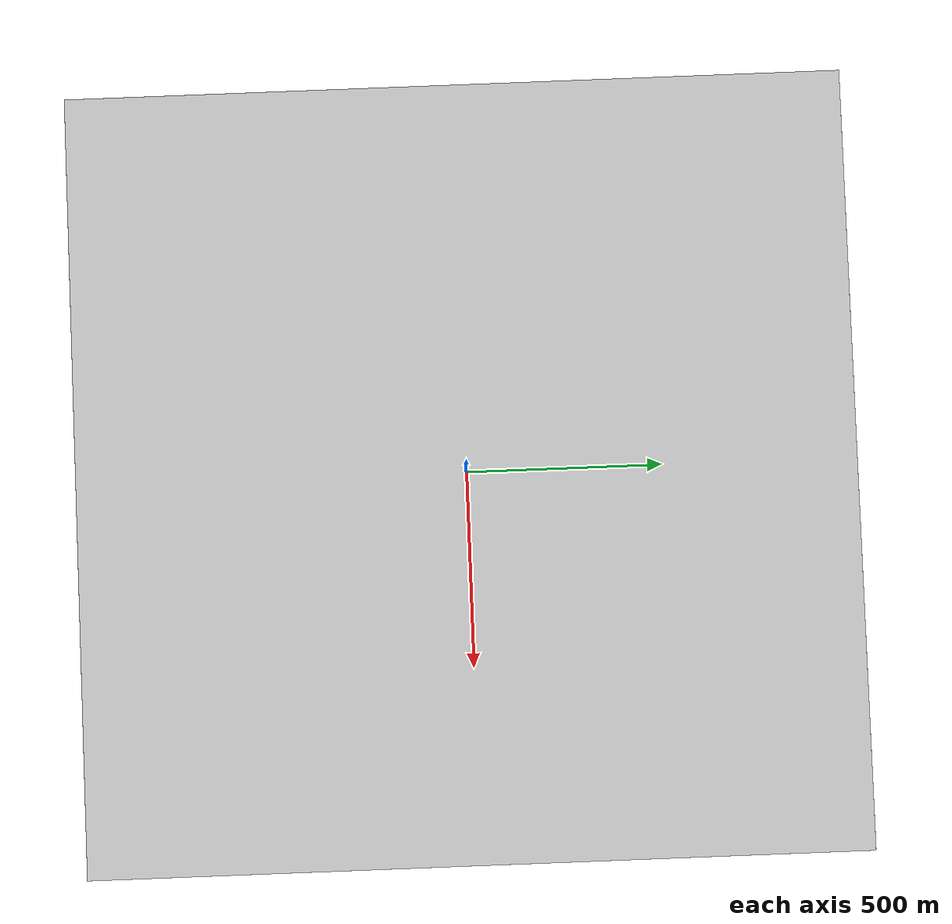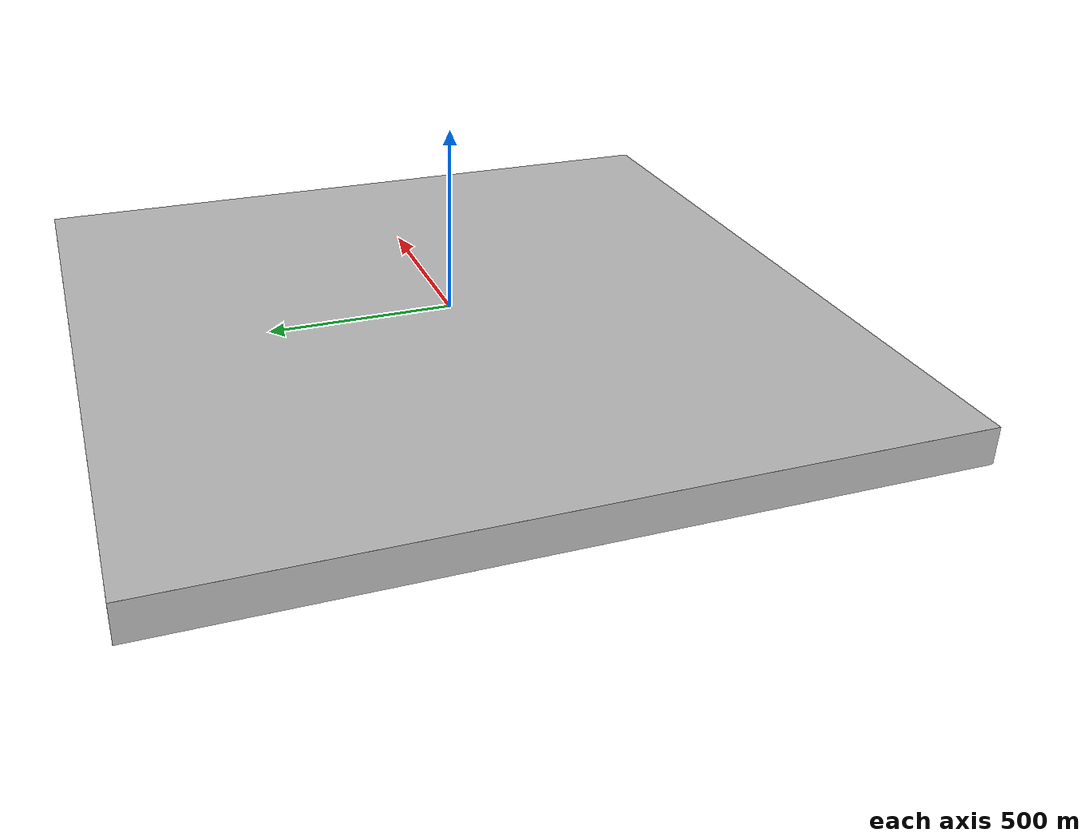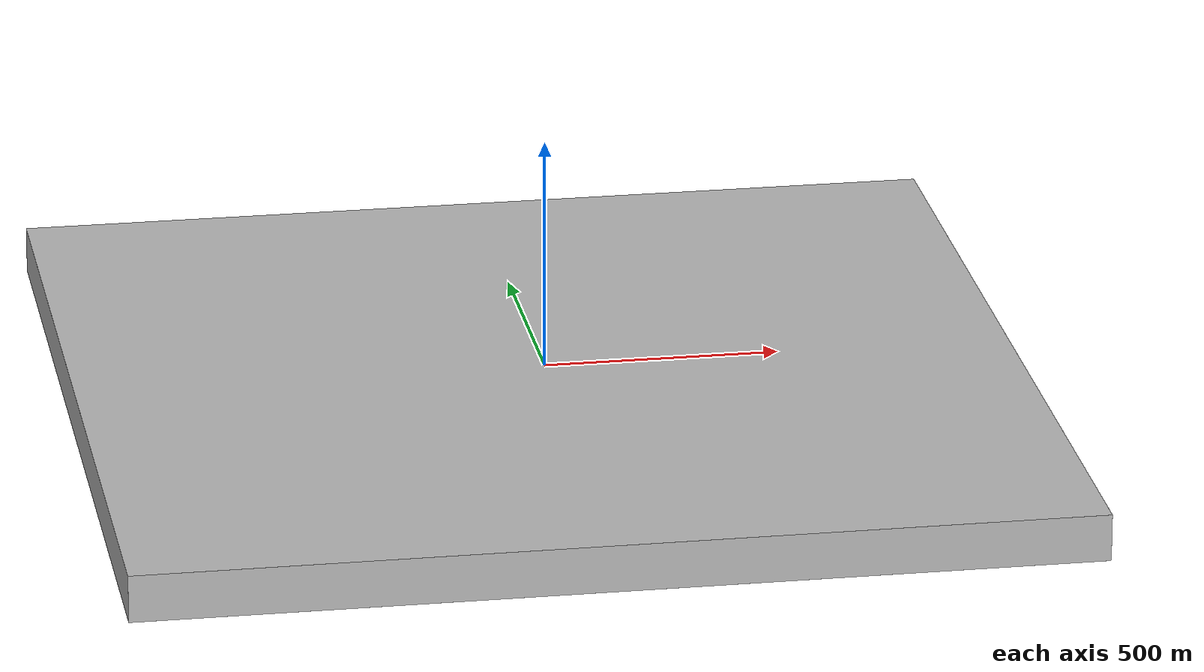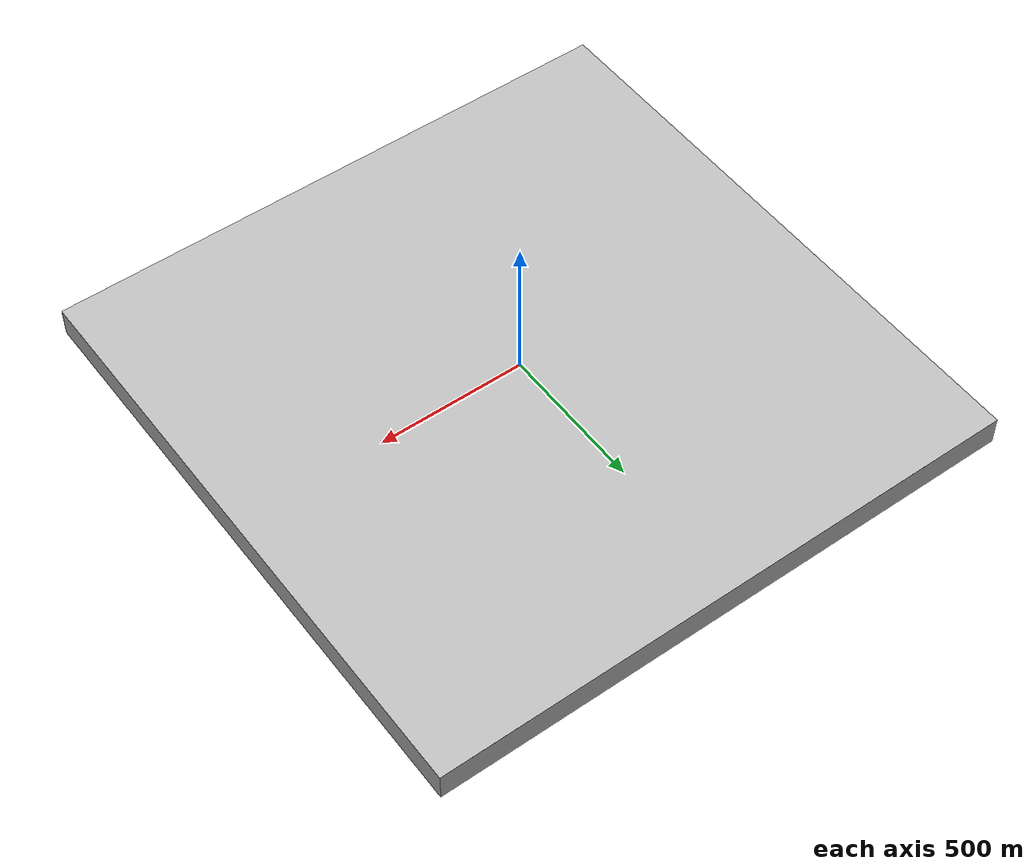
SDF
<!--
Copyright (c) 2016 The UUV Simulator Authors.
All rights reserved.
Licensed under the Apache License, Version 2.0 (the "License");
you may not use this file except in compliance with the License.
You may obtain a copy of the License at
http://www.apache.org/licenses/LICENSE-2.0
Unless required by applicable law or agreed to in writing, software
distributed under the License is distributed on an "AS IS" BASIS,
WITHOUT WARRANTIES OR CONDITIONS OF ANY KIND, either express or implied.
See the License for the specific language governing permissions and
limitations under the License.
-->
<?xml version="1.0" ?>
<sdf version="1.5">
  <world name="empty_underwater">
    <physics name="default_physics" default="true" type="ode">
      <max_step_size>0.002</max_step_size>
      <real_time_factor>1</real_time_factor>
      <real_time_update_rate>500</real_time_update_rate>
      <ode>
        <solver>
          <type>quick</type>
          <iters>50</iters>
          <sor>0.5</sor>
        </solver>
      </ode>
    </physics>
    <scene>
      <ambient>0.01 0.01 0.01 1.0</ambient>
      <sky>
        <clouds>
          <speed>12</speed>
        </clouds>
      </sky>
      <shadows>1</shadows>
      <fog>
        <color>0.1 0.2 0.3 1.0</color>
        <type>linear</type>
        <density>0.001</density>
        <start>10</start>
        <end>200</end>
      </fog>
    </scene>

    <!-- Origin placed somewhere in the middle of the North Sea  -->
    <spherical_coordinates>
      <latitude_deg>56.71897669633431</latitude_deg>
      <longitude_deg>3.515625</longitude_deg>
    </spherical_coordinates>

    <!-- Global light source -->
    <include>
      <uri>model://sun</uri>
    </include>

    <!-- Virtual NED frame -->
    <include>
      <uri>model://ned_frame</uri>
      <pose>0 0 0 0 0 0</pose>
    </include>

    <!-- Bounding box with sea surface -->
    <include>
      <uri>model://ocean_box</uri>
      <pose>0 0 0 0 0 0</pose>
    </include>

    <plugin name="underwater_current_plugin" filename="libuuv_underwater_current_ros_plugin.so">
      <namespace>hydrodynamics</namespace>
      <constant_current>
        <topic>current_velocity</topic>
        <velocity>
          <mean>0</mean>
          <min>0</min>
          <max>5</max>
          <mu>0.0</mu>
          <noiseAmp>0.0</noiseAmp>
        </velocity>

        <horizontal_angle>
          <mean>0</mean>
          <min>-3.141592653589793238</min>
          <max>3.141592653589793238</max>
          <mu>0.0</mu>
          <noiseAmp>0.0</noiseAmp>
        </horizontal_angle>

        <vertical_angle>
          <mean>0</mean>
          <min>-3.141592653589793238</min>
          <max>3.141592653589793238</max>
          <mu>0.0</mu>
          <noiseAmp>0.0</noiseAmp>
        </vertical_angle>
      </constant_current>
    </plugin>

    <plugin name="sc_interface" filename="libuuv_sc_ros_interface_plugin.so"/>

  </world>
</sdf>

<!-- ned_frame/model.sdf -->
<sdf version='1.5'>
    <model name="world_ned">

      <pose>0 0 0 0 0 0</pose>
      <static>true</static>

      <link name="world_ned">
        <gravity>0</gravity>
        <pose>0 0 0 3.14159265359 0 1.5707963267948966</pose>

        <visual name="N_visual">
          <pose>0.25 0 0 1.5707963267948966 0 1.5707963267948966</pose>
          <geometry>
            <cylinder>
              <radius>0.01</radius>
              <length>0.5</length>
            </cylinder>
          </geometry>
          <material>
            <script>
              <uri>file://media/materials/scripts/gazebo.material</uri>
              <name>Gazebo/Red</name>
            </script>
          </material>
        </visual>

        <visual name="E_visual">
          <pose>0 0.25 0 1.5707963267948966 0 0</pose>
          <geometry>
            <cylinder>
              <radius>0.01</radius>
              <length>0.5</length>
            </cylinder>
          </geometry>
          <material>
            <script>
              <uri>file://media/materials/scripts/gazebo.material</uri>
              <name>Gazebo/Green</name>
            </script>
          </material>
        </visual>

        <visual name="D_visual">
          <pose>0 0 0.25 0 0 0</pose>
          <geometry>
            <cylinder>
              <radius>0.01</radius>
              <length>0.5</length>
            </cylinder>
          </geometry>
          <material>
            <script>
              <uri>file://media/materials/scripts/gazebo.material</uri>
              <name>Gazebo/Blue</name>
            </script>
          </material>
        </visual>
      </link>
    </model>
</sdf>

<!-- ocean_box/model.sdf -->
<sdf version="1.5">
  <model name="ocean_box">
    <static>true</static>
    <link name="link">
      <visual name="ground">
        <cast_shadows>false</cast_shadows>
        <pose>0 0 -100 0 0 0</pose>
        <geometry>
          <box>
            <size>2000 2000 .1</size>
          </box>
        </geometry>
        <material>
          <script>
            <uri>file://Media/materials/scripts/sand.material</uri>
            <name>UUVSimulator/SandAndStones</name>
          </script>
        </material>
      </visual>

      <collision name="ground">
        <pose>0 0 -100 0 0 0</pose>
        <geometry>
          <box>
            <size>2000 2000 .1</size>
          </box>
        </geometry>
      </collision>

      <visual name="surface">
        <cast_shadows>false</cast_shadows>
        <pose>0 0 0 0 0 0</pose>
        <geometry>
          <box>
            <size>2000 2000 .1</size>
          </box>
        </geometry>
        <material>
          <script>
            <uri>file://Media/materials/scripts/water.material</uri>
            <name>UUVSimulator/StaticDeepWater</name>
          </script>
        </material>
      </visual>

      <visual name="north">
        <cast_shadows>false</cast_shadows>
        <pose>1000 0 -50 0 0 0</pose>
        <geometry>
          <box>
            <size>.1 2000 100</size>
          </box>
        </geometry>
        <material>
          <script>
            <uri>file://Media/materials/scripts/water.material</uri>
            <name>UUVSimulator/SeaWall</name>
          </script>
        </material>
      </visual>

      <visual name="south">
        <cast_shadows>false</cast_shadows>
        <pose>-1000 0 -50 0 0 0</pose>
        <geometry>
          <box>
            <size>.1 2000 100</size>
          </box>
        </geometry>
        <material>
          <script>
            <uri>file://Media/materials/scripts/water.material</uri>
            <name>UUVSimulator/SeaWall</name>
          </script>
        </material>
      </visual>

      <visual name="east">
        <cast_shadows>false</cast_shadows>
        <pose>0 -1000 -50 0 0 0</pose>
        <geometry>
          <box>
            <size>2000 .1 100</size>
          </box>
        </geometry>
        <material>
          <script>
            <uri>file://Media/materials/scripts/water.material</uri>
            <name>UUVSimulator/SeaWall</name>
          </script>
        </material>
      </visual>

      <visual name="west">
        <cast_shadows>false</cast_shadows>
        <pose>0 1000 -50 0 0 0</pose>
        <geometry>
          <box>
            <size>2000 .1 100</size>
          </box>
        </geometry>
        <material>
          <script>
            <uri>file://Media/materials/scripts/water.material</uri>
            <name>UUVSimulator/SeaWall</name>
          </script>
        </material>
      </visual>
    </link>
  </model>
</sdf>
